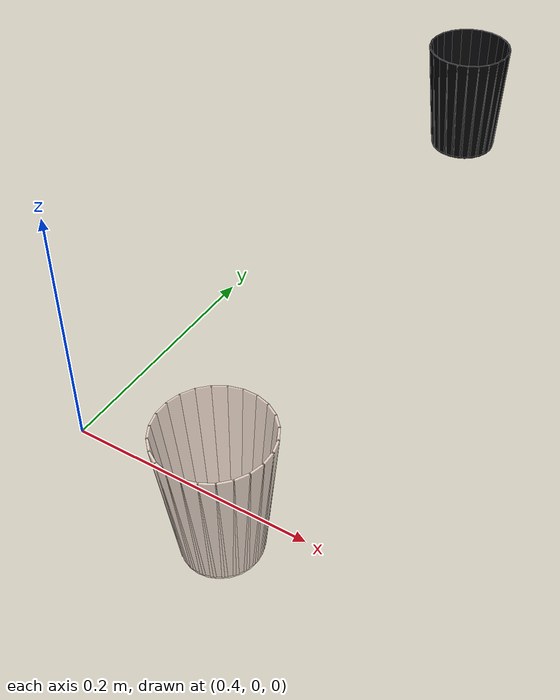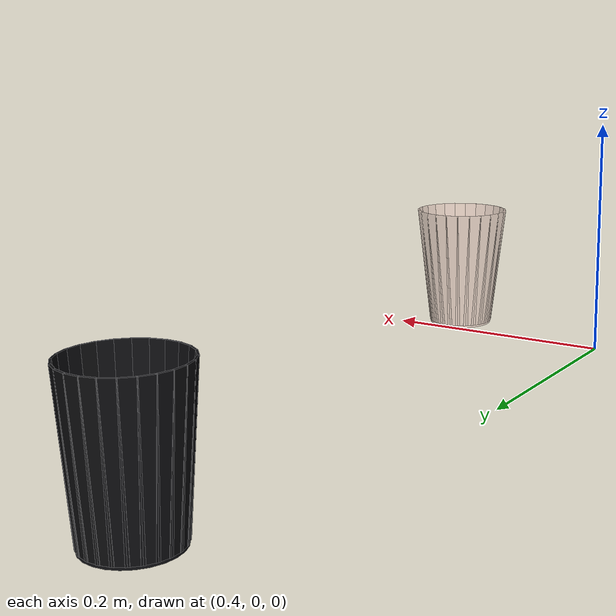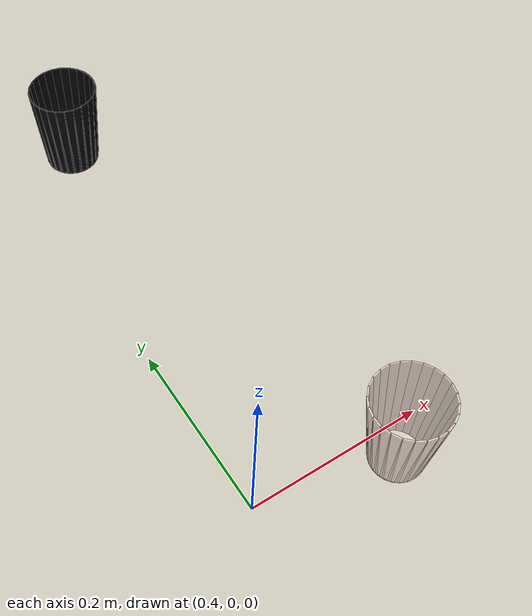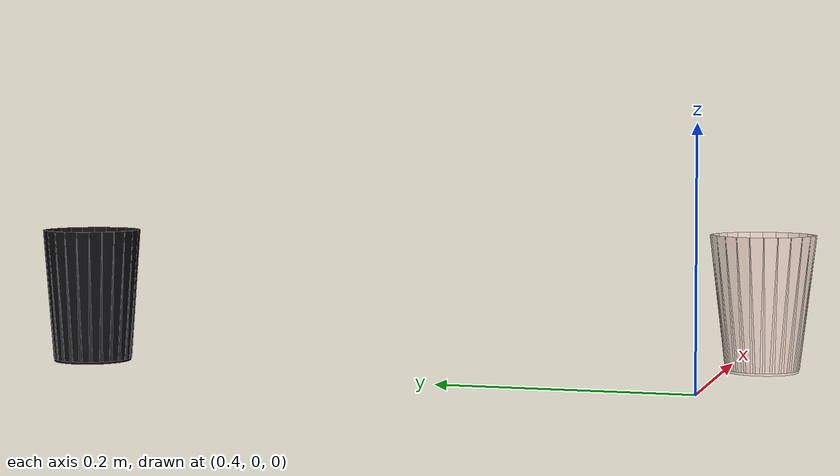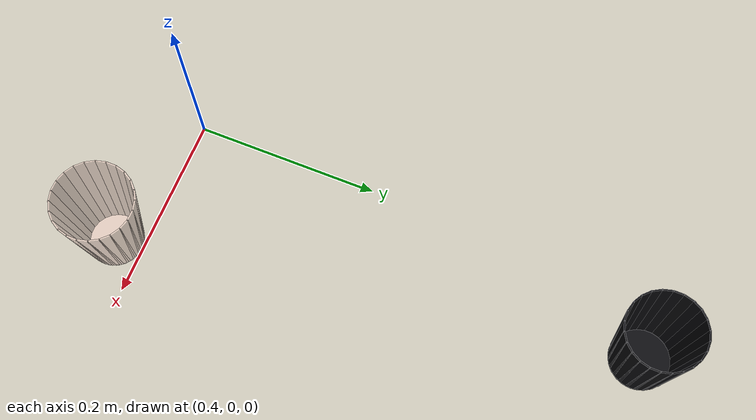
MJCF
<!-- GENERATED by scripts/build_yam_assets.py from teleop_sim/envs/yam_assets.py.
     Do not edit by hand: change the generator and re-run it. -->
<mujoco model="gem13_cups">
  <worldbody>
    <body name="cup" pos="0.552 -0.03 0">
      <freejoint name="cup_free"/>
      <geom name="cup_base" type="cylinder" size="0.029 0.001" pos="0 0 0.001" density="900" rgba="0.93 0.8 0.76 0.55" friction="1 0.02 0.001" condim="4" solimp="0.95 0.99 0.001" solref="0.004 1"/>
      <geom name="cup_wall00" type="box" size="0.00075 0.005865 0.054390" pos="0.034750 0.000000 0.056" quat="0.998207 -0.000000 0.059861 0.000000" density="900" rgba="0.93 0.8 0.76 0.55" friction="1 0.02 0.001" condim="4" solimp="0.95 0.99 0.001" solref="0.004 1"/>
      <geom name="cup_wall01" type="box" size="0.00075 0.005865 0.054390" pos="0.033566 0.008994 0.056" quat="0.989667 -0.007813 0.059349 0.130292" density="900" rgba="0.93 0.8 0.76 0.55" friction="1 0.02 0.001" condim="4" solimp="0.95 0.99 0.001" solref="0.004 1"/>
      <geom name="cup_wall02" type="box" size="0.00075 0.005865 0.054390" pos="0.030094 0.017375 0.056" quat="0.964194 -0.015493 0.057821 0.258355" density="900" rgba="0.93 0.8 0.76 0.55" friction="1 0.02 0.001" condim="4" solimp="0.95 0.99 0.001" solref="0.004 1"/>
      <geom name="cup_wall03" type="box" size="0.00075 0.005865 0.054390" pos="0.024572 0.024572 0.056" quat="0.922223 -0.022908 0.055305 0.381997" density="900" rgba="0.93 0.8 0.76 0.55" friction="1 0.02 0.001" condim="4" solimp="0.95 0.99 0.001" solref="0.004 1"/>
      <geom name="cup_wall04" type="box" size="0.00075 0.005865 0.054390" pos="0.017375 0.030094 0.056" quat="0.864472 -0.029931 0.051841 0.499103" density="900" rgba="0.93 0.8 0.76 0.55" friction="1 0.02 0.001" condim="4" solimp="0.95 0.99 0.001" solref="0.004 1"/>
      <geom name="cup_wall05" type="box" size="0.00075 0.005865 0.054390" pos="0.008994 0.033566 0.056" quat="0.791931 -0.036441 0.047491 0.607670" density="900" rgba="0.93 0.8 0.76 0.55" friction="1 0.02 0.001" condim="4" solimp="0.95 0.99 0.001" solref="0.004 1"/>
      <geom name="cup_wall06" type="box" size="0.00075 0.005865 0.054390" pos="0.000000 0.034750 0.056" quat="0.705839 -0.042328 0.042328 0.705839" density="900" rgba="0.93 0.8 0.76 0.55" friction="1 0.02 0.001" condim="4" solimp="0.95 0.99 0.001" solref="0.004 1"/>
      <geom name="cup_wall07" type="box" size="0.00075 0.005865 0.054390" pos="-0.008994 0.033566 0.056" quat="0.607670 -0.047491 0.036441 0.791931" density="900" rgba="0.93 0.8 0.76 0.55" friction="1 0.02 0.001" condim="4" solimp="0.95 0.99 0.001" solref="0.004 1"/>
      <geom name="cup_wall08" type="box" size="0.00075 0.005865 0.054390" pos="-0.017375 0.030094 0.056" quat="0.499103 -0.051841 0.029931 0.864472" density="900" rgba="0.93 0.8 0.76 0.55" friction="1 0.02 0.001" condim="4" solimp="0.95 0.99 0.001" solref="0.004 1"/>
      <geom name="cup_wall09" type="box" size="0.00075 0.005865 0.054390" pos="-0.024572 0.024572 0.056" quat="0.381997 -0.055305 0.022908 0.922223" density="900" rgba="0.93 0.8 0.76 0.55" friction="1 0.02 0.001" condim="4" solimp="0.95 0.99 0.001" solref="0.004 1"/>
      <geom name="cup_wall10" type="box" size="0.00075 0.005865 0.054390" pos="-0.030094 0.017375 0.056" quat="0.258355 -0.057821 0.015493 0.964194" density="900" rgba="0.93 0.8 0.76 0.55" friction="1 0.02 0.001" condim="4" solimp="0.95 0.99 0.001" solref="0.004 1"/>
      <geom name="cup_wall11" type="box" size="0.00075 0.005865 0.054390" pos="-0.033566 0.008994 0.056" quat="0.130292 -0.059349 0.007813 0.989667" density="900" rgba="0.93 0.8 0.76 0.55" friction="1 0.02 0.001" condim="4" solimp="0.95 0.99 0.001" solref="0.004 1"/>
      <geom name="cup_wall12" type="box" size="0.00075 0.005865 0.054390" pos="-0.034750 0.000000 0.056" quat="0.000000 -0.059861 0.000000 0.998207" density="900" rgba="0.93 0.8 0.76 0.55" friction="1 0.02 0.001" condim="4" solimp="0.95 0.99 0.001" solref="0.004 1"/>
      <geom name="cup_wall13" type="box" size="0.00075 0.005865 0.054390" pos="-0.033566 -0.008994 0.056" quat="-0.130292 -0.059349 -0.007813 0.989667" density="900" rgba="0.93 0.8 0.76 0.55" friction="1 0.02 0.001" condim="4" solimp="0.95 0.99 0.001" solref="0.004 1"/>
      <geom name="cup_wall14" type="box" size="0.00075 0.005865 0.054390" pos="-0.030094 -0.017375 0.056" quat="-0.258355 -0.057821 -0.015493 0.964194" density="900" rgba="0.93 0.8 0.76 0.55" friction="1 0.02 0.001" condim="4" solimp="0.95 0.99 0.001" solref="0.004 1"/>
      <geom name="cup_wall15" type="box" size="0.00075 0.005865 0.054390" pos="-0.024572 -0.024572 0.056" quat="-0.381997 -0.055305 -0.022908 0.922223" density="900" rgba="0.93 0.8 0.76 0.55" friction="1 0.02 0.001" condim="4" solimp="0.95 0.99 0.001" solref="0.004 1"/>
      <geom name="cup_wall16" type="box" size="0.00075 0.005865 0.054390" pos="-0.017375 -0.030094 0.056" quat="-0.499103 -0.051841 -0.029931 0.864472" density="900" rgba="0.93 0.8 0.76 0.55" friction="1 0.02 0.001" condim="4" solimp="0.95 0.99 0.001" solref="0.004 1"/>
      <geom name="cup_wall17" type="box" size="0.00075 0.005865 0.054390" pos="-0.008994 -0.033566 0.056" quat="-0.607670 -0.047491 -0.036441 0.791931" density="900" rgba="0.93 0.8 0.76 0.55" friction="1 0.02 0.001" condim="4" solimp="0.95 0.99 0.001" solref="0.004 1"/>
      <geom name="cup_wall18" type="box" size="0.00075 0.005865 0.054390" pos="-0.000000 -0.034750 0.056" quat="-0.705839 -0.042328 -0.042328 0.705839" density="900" rgba="0.93 0.8 0.76 0.55" friction="1 0.02 0.001" condim="4" solimp="0.95 0.99 0.001" solref="0.004 1"/>
      <geom name="cup_wall19" type="box" size="0.00075 0.005865 0.054390" pos="0.008994 -0.033566 0.056" quat="-0.791931 -0.036441 -0.047491 0.607670" density="900" rgba="0.93 0.8 0.76 0.55" friction="1 0.02 0.001" condim="4" solimp="0.95 0.99 0.001" solref="0.004 1"/>
      <geom name="cup_wall20" type="box" size="0.00075 0.005865 0.054390" pos="0.017375 -0.030094 0.056" quat="-0.864472 -0.029931 -0.051841 0.499103" density="900" rgba="0.93 0.8 0.76 0.55" friction="1 0.02 0.001" condim="4" solimp="0.95 0.99 0.001" solref="0.004 1"/>
      <geom name="cup_wall21" type="box" size="0.00075 0.005865 0.054390" pos="0.024572 -0.024572 0.056" quat="-0.922223 -0.022908 -0.055305 0.381997" density="900" rgba="0.93 0.8 0.76 0.55" friction="1 0.02 0.001" condim="4" solimp="0.95 0.99 0.001" solref="0.004 1"/>
      <geom name="cup_wall22" type="box" size="0.00075 0.005865 0.054390" pos="0.030094 -0.017375 0.056" quat="-0.964194 -0.015493 -0.057821 0.258355" density="900" rgba="0.93 0.8 0.76 0.55" friction="1 0.02 0.001" condim="4" solimp="0.95 0.99 0.001" solref="0.004 1"/>
      <geom name="cup_wall23" type="box" size="0.00075 0.005865 0.054390" pos="0.033566 -0.008994 0.056" quat="-0.989667 -0.007813 -0.059349 0.130292" density="900" rgba="0.93 0.8 0.76 0.55" friction="1 0.02 0.001" condim="4" solimp="0.95 0.99 0.001" solref="0.004 1"/>
    </body>
    <body name="black_cup" pos="0.47 0.52 0">
      <freejoint name="black_cup_free"/>
      <geom name="black_cup_base" type="cylinder" size="0.032 0.001" pos="0 0 0.001" density="900" rgba="0.05 0.05 0.06 1" friction="1 0.02 0.001" condim="4" solimp="0.95 0.99 0.001" solref="0.004 1"/>
      <geom name="black_cup_wall00" type="box" size="0.00075 0.005581 0.054148" pos="0.035250 0.000000 0.056" quat="0.999317 -0.000000 0.036961 0.000000" density="900" rgba="0.05 0.05 0.06 1" friction="1 0.02 0.001" condim="4" solimp="0.95 0.99 0.001" solref="0.004 1"/>
      <geom name="black_cup_wall01" type="box" size="0.00075 0.005581 0.054148" pos="0.034049 0.009123 0.056" quat="0.990767 -0.004824 0.036645 0.130437" density="900" rgba="0.05 0.05 0.06 1" friction="1 0.02 0.001" condim="4" solimp="0.95 0.99 0.001" solref="0.004 1"/>
      <geom name="black_cup_wall02" type="box" size="0.00075 0.005581 0.054148" pos="0.030527 0.017625 0.056" quat="0.965266 -0.009566 0.035702 0.258642" density="900" rgba="0.05 0.05 0.06 1" friction="1 0.02 0.001" condim="4" solimp="0.95 0.99 0.001" solref="0.004 1"/>
      <geom name="black_cup_wall03" type="box" size="0.00075 0.005581 0.054148" pos="0.024926 0.024926 0.056" quat="0.923248 -0.014144 0.034148 0.382422" density="900" rgba="0.05 0.05 0.06 1" friction="1 0.02 0.001" condim="4" solimp="0.95 0.99 0.001" solref="0.004 1"/>
      <geom name="black_cup_wall04" type="box" size="0.00075 0.005581 0.054148" pos="0.017625 0.030527 0.056" quat="0.865434 -0.018481 0.032009 0.499658" density="900" rgba="0.05 0.05 0.06 1" friction="1 0.02 0.001" condim="4" solimp="0.95 0.99 0.001" solref="0.004 1"/>
      <geom name="black_cup_wall05" type="box" size="0.00075 0.005581 0.054148" pos="0.009123 0.034049 0.056" quat="0.792811 -0.022500 0.029323 0.608345" density="900" rgba="0.05 0.05 0.06 1" friction="1 0.02 0.001" condim="4" solimp="0.95 0.99 0.001" solref="0.004 1"/>
      <geom name="black_cup_wall06" type="box" size="0.00075 0.005581 0.054148" pos="0.000000 0.035250 0.056" quat="0.706624 -0.026135 0.026135 0.706624" density="900" rgba="0.05 0.05 0.06 1" friction="1 0.02 0.001" condim="4" solimp="0.95 0.99 0.001" solref="0.004 1"/>
      <geom name="black_cup_wall07" type="box" size="0.00075 0.005581 0.054148" pos="-0.009123 0.034049 0.056" quat="0.608345 -0.029323 0.022500 0.792811" density="900" rgba="0.05 0.05 0.06 1" friction="1 0.02 0.001" condim="4" solimp="0.95 0.99 0.001" solref="0.004 1"/>
      <geom name="black_cup_wall08" type="box" size="0.00075 0.005581 0.054148" pos="-0.017625 0.030527 0.056" quat="0.499658 -0.032009 0.018481 0.865434" density="900" rgba="0.05 0.05 0.06 1" friction="1 0.02 0.001" condim="4" solimp="0.95 0.99 0.001" solref="0.004 1"/>
      <geom name="black_cup_wall09" type="box" size="0.00075 0.005581 0.054148" pos="-0.024926 0.024926 0.056" quat="0.382422 -0.034148 0.014144 0.923248" density="900" rgba="0.05 0.05 0.06 1" friction="1 0.02 0.001" condim="4" solimp="0.95 0.99 0.001" solref="0.004 1"/>
      <geom name="black_cup_wall10" type="box" size="0.00075 0.005581 0.054148" pos="-0.030527 0.017625 0.056" quat="0.258642 -0.035702 0.009566 0.965266" density="900" rgba="0.05 0.05 0.06 1" friction="1 0.02 0.001" condim="4" solimp="0.95 0.99 0.001" solref="0.004 1"/>
      <geom name="black_cup_wall11" type="box" size="0.00075 0.005581 0.054148" pos="-0.034049 0.009123 0.056" quat="0.130437 -0.036645 0.004824 0.990767" density="900" rgba="0.05 0.05 0.06 1" friction="1 0.02 0.001" condim="4" solimp="0.95 0.99 0.001" solref="0.004 1"/>
      <geom name="black_cup_wall12" type="box" size="0.00075 0.005581 0.054148" pos="-0.035250 0.000000 0.056" quat="0.000000 -0.036961 0.000000 0.999317" density="900" rgba="0.05 0.05 0.06 1" friction="1 0.02 0.001" condim="4" solimp="0.95 0.99 0.001" solref="0.004 1"/>
      <geom name="black_cup_wall13" type="box" size="0.00075 0.005581 0.054148" pos="-0.034049 -0.009123 0.056" quat="-0.130437 -0.036645 -0.004824 0.990767" density="900" rgba="0.05 0.05 0.06 1" friction="1 0.02 0.001" condim="4" solimp="0.95 0.99 0.001" solref="0.004 1"/>
      <geom name="black_cup_wall14" type="box" size="0.00075 0.005581 0.054148" pos="-0.030527 -0.017625 0.056" quat="-0.258642 -0.035702 -0.009566 0.965266" density="900" rgba="0.05 0.05 0.06 1" friction="1 0.02 0.001" condim="4" solimp="0.95 0.99 0.001" solref="0.004 1"/>
      <geom name="black_cup_wall15" type="box" size="0.00075 0.005581 0.054148" pos="-0.024926 -0.024926 0.056" quat="-0.382422 -0.034148 -0.014144 0.923248" density="900" rgba="0.05 0.05 0.06 1" friction="1 0.02 0.001" condim="4" solimp="0.95 0.99 0.001" solref="0.004 1"/>
      <geom name="black_cup_wall16" type="box" size="0.00075 0.005581 0.054148" pos="-0.017625 -0.030527 0.056" quat="-0.499658 -0.032009 -0.018481 0.865434" density="900" rgba="0.05 0.05 0.06 1" friction="1 0.02 0.001" condim="4" solimp="0.95 0.99 0.001" solref="0.004 1"/>
      <geom name="black_cup_wall17" type="box" size="0.00075 0.005581 0.054148" pos="-0.009123 -0.034049 0.056" quat="-0.608345 -0.029323 -0.022500 0.792811" density="900" rgba="0.05 0.05 0.06 1" friction="1 0.02 0.001" condim="4" solimp="0.95 0.99 0.001" solref="0.004 1"/>
      <geom name="black_cup_wall18" type="box" size="0.00075 0.005581 0.054148" pos="-0.000000 -0.035250 0.056" quat="-0.706624 -0.026135 -0.026135 0.706624" density="900" rgba="0.05 0.05 0.06 1" friction="1 0.02 0.001" condim="4" solimp="0.95 0.99 0.001" solref="0.004 1"/>
      <geom name="black_cup_wall19" type="box" size="0.00075 0.005581 0.054148" pos="0.009123 -0.034049 0.056" quat="-0.792811 -0.022500 -0.029323 0.608345" density="900" rgba="0.05 0.05 0.06 1" friction="1 0.02 0.001" condim="4" solimp="0.95 0.99 0.001" solref="0.004 1"/>
      <geom name="black_cup_wall20" type="box" size="0.00075 0.005581 0.054148" pos="0.017625 -0.030527 0.056" quat="-0.865434 -0.018481 -0.032009 0.499658" density="900" rgba="0.05 0.05 0.06 1" friction="1 0.02 0.001" condim="4" solimp="0.95 0.99 0.001" solref="0.004 1"/>
      <geom name="black_cup_wall21" type="box" size="0.00075 0.005581 0.054148" pos="0.024926 -0.024926 0.056" quat="-0.923248 -0.014144 -0.034148 0.382422" density="900" rgba="0.05 0.05 0.06 1" friction="1 0.02 0.001" condim="4" solimp="0.95 0.99 0.001" solref="0.004 1"/>
      <geom name="black_cup_wall22" type="box" size="0.00075 0.005581 0.054148" pos="0.030527 -0.017625 0.056" quat="-0.965266 -0.009566 -0.035702 0.258642" density="900" rgba="0.05 0.05 0.06 1" friction="1 0.02 0.001" condim="4" solimp="0.95 0.99 0.001" solref="0.004 1"/>
      <geom name="black_cup_wall23" type="box" size="0.00075 0.005581 0.054148" pos="0.034049 -0.009123 0.056" quat="-0.990767 -0.004824 -0.036645 0.130437" density="900" rgba="0.05 0.05 0.06 1" friction="1 0.02 0.001" condim="4" solimp="0.95 0.99 0.001" solref="0.004 1"/>
    </body>
  </worldbody>
</mujoco>
